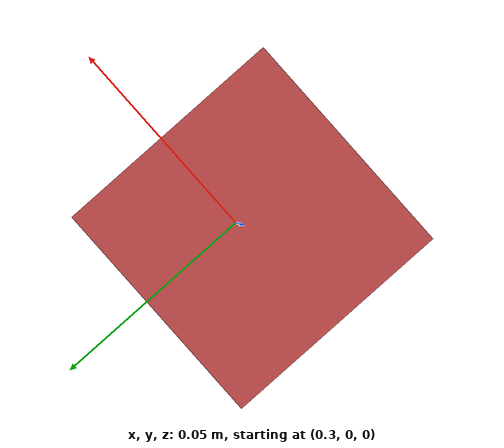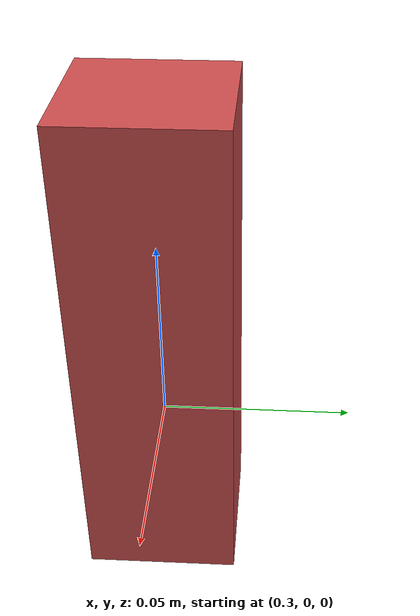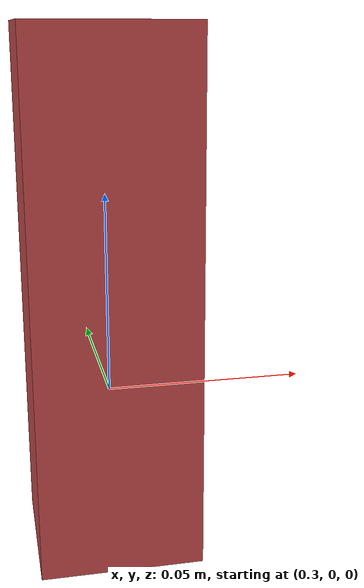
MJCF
<mujoco model="cube">
  <asset>
    <material name="cube_material" rgba="0.8 0.3 0.3 1" shininess="0.5"/>
  </asset>

  <worldbody>
    <body name="cube" pos="0.3 0 0.025">
      <freejoint name="cube_joint"/>
      <geom name="cube_geom"
            type="box"
            size="0.02 0.02 0.065"
            material="cube_material"
            condim="6"
            priority="1"
            friction="0.8 0.01 0.003"
            density="1000"/>
      <inertial pos="0 0 0" mass="30" diaginertia="0.0001 0.0001 0.0001"/>
    </body>
  </worldbody>
</mujoco>
